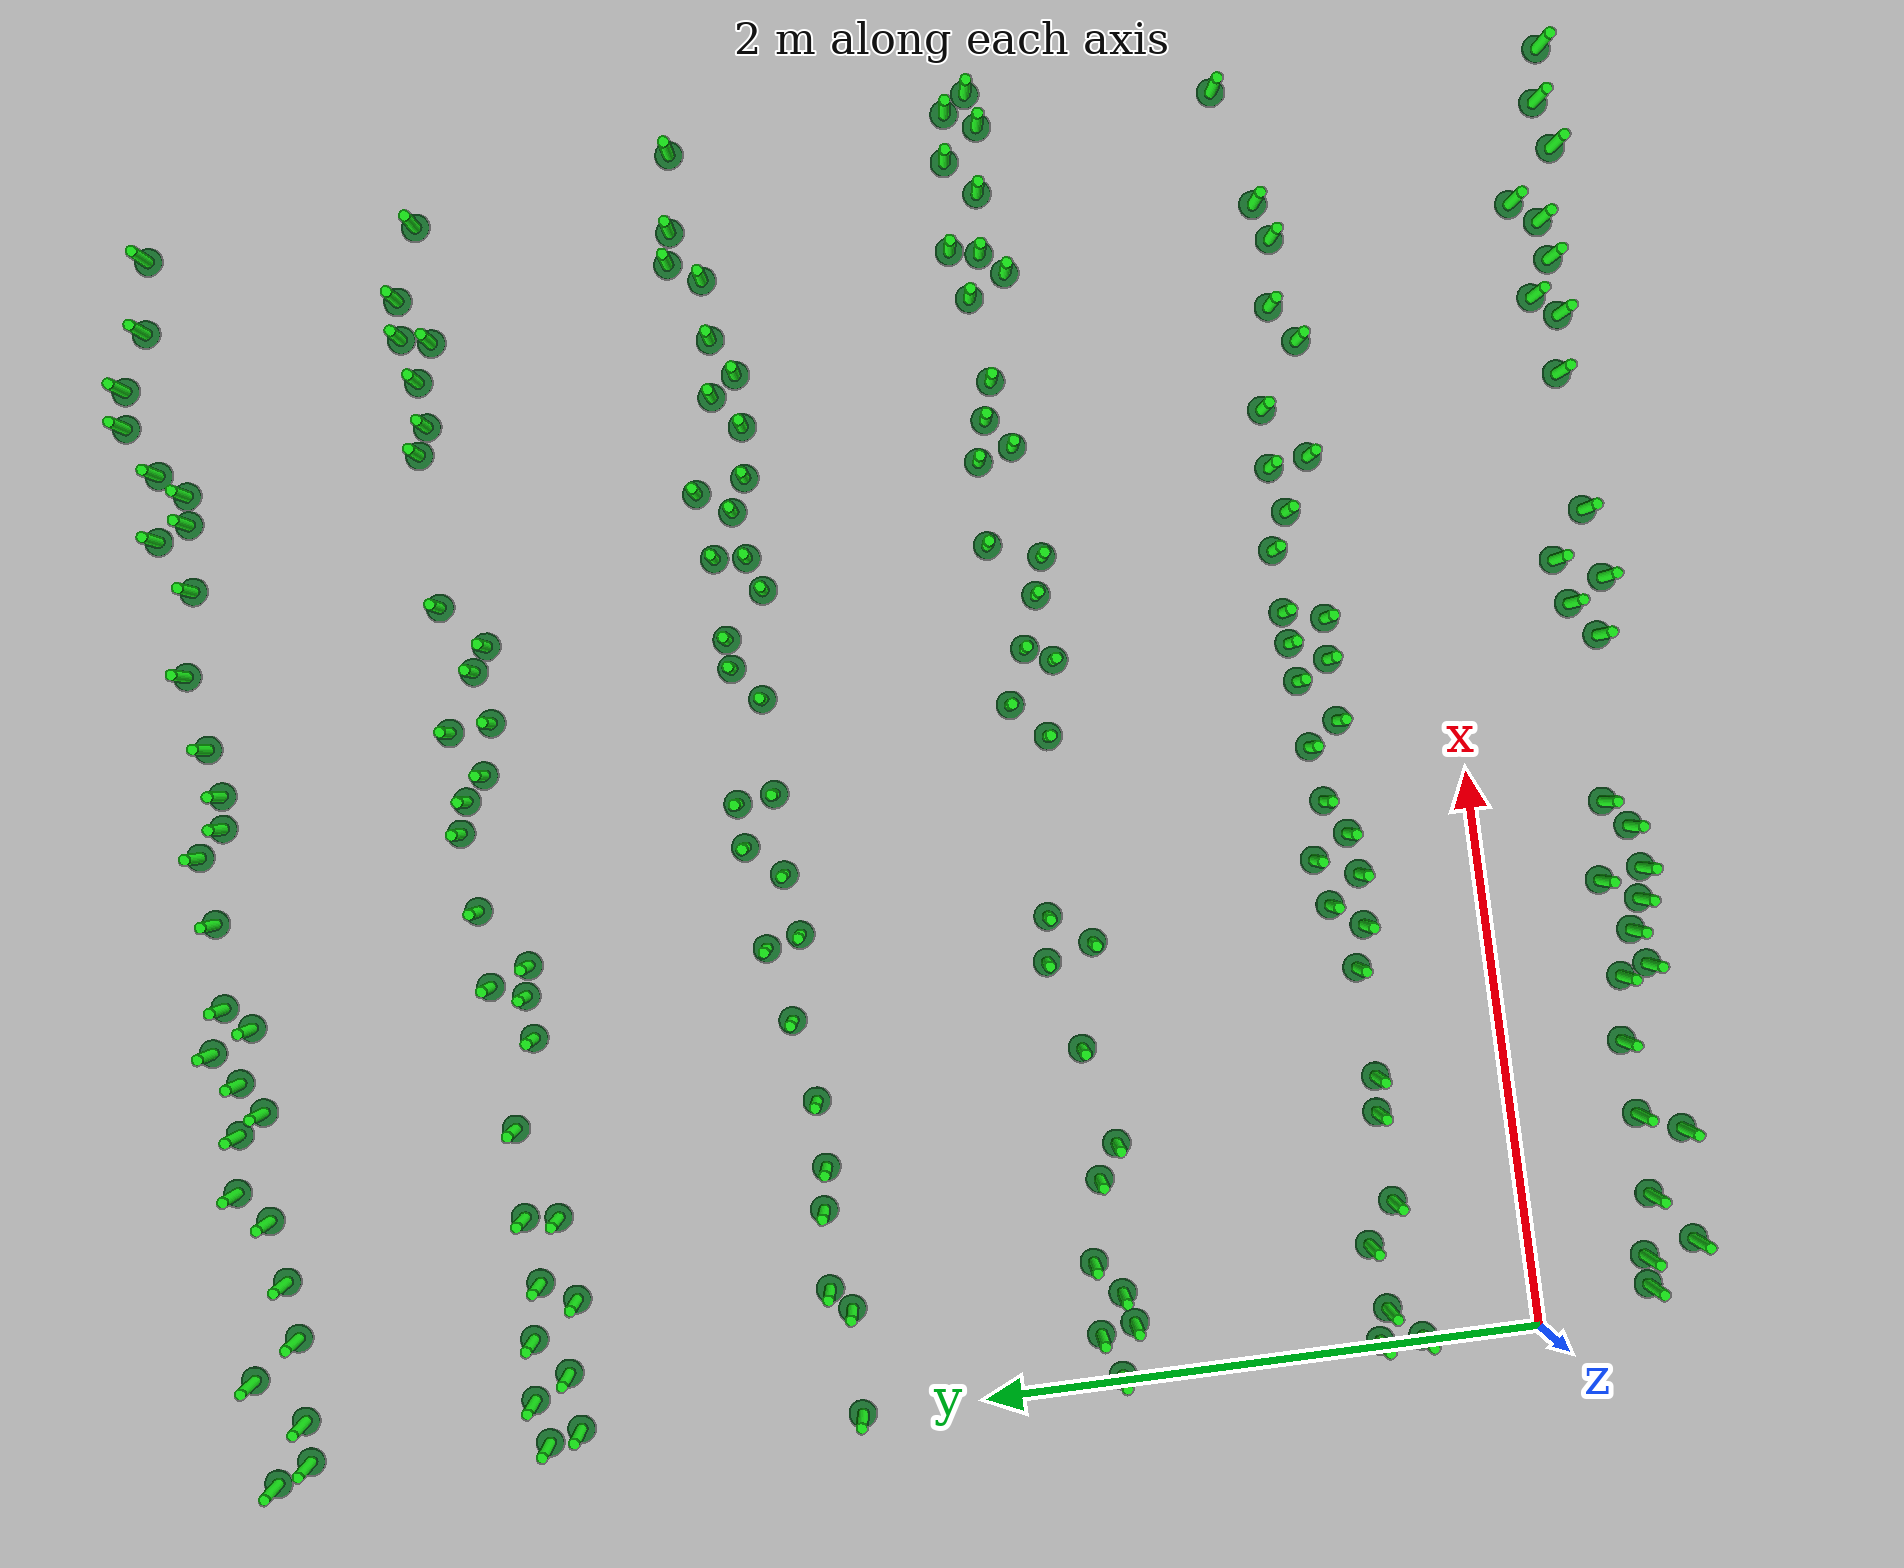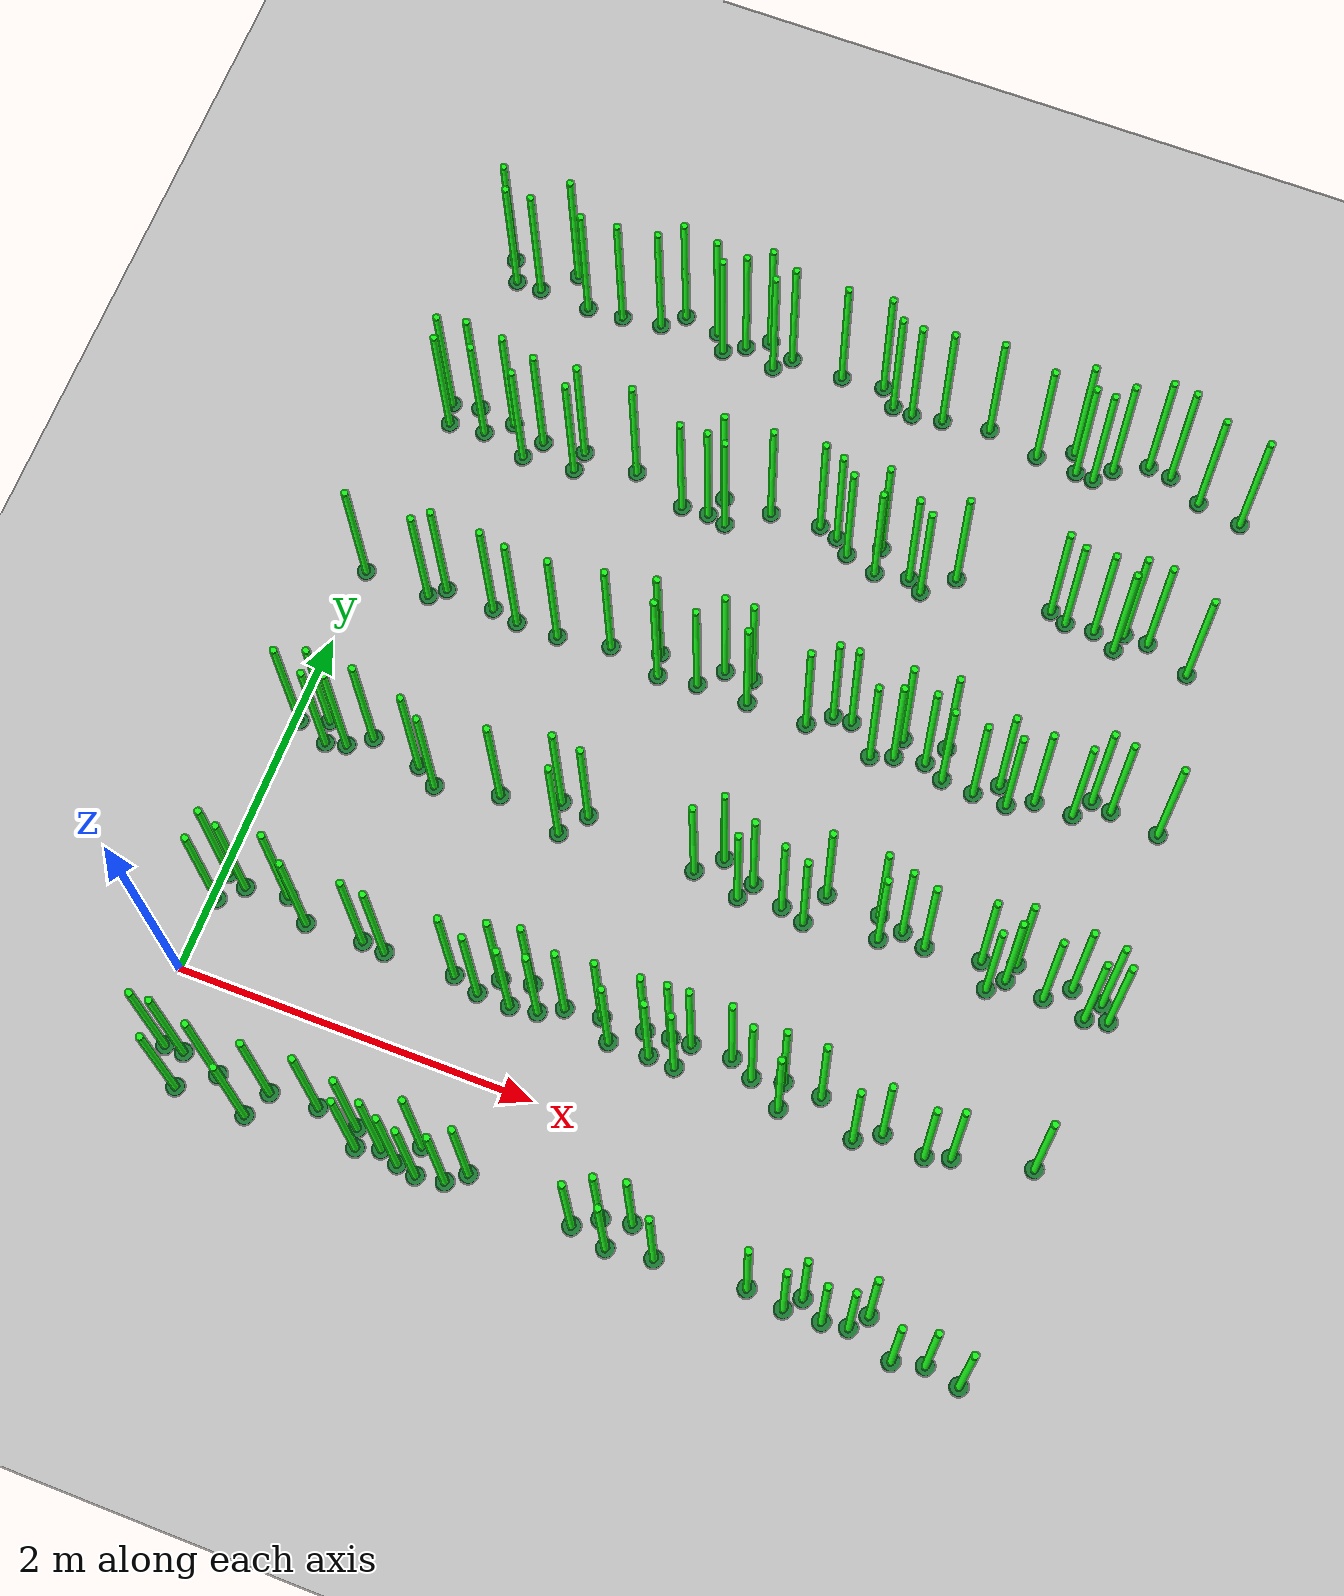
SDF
<sdf version="1.4">
 <world name="default">
  <include><uri>model://ground_plane</uri></include>
  <include><uri>model://sun</uri></include>
  <model name="plantgreen_0_1">
   <include><uri>model://plantgreen</uri></include>
   <pose>1.73545224768 -0.548032230448 0 0 0 0</pose>
  </model>
  <model name="plantgreen_0_5">
   <include><uri>model://plantgreen</uri></include>
   <pose>2.62827772479 -0.573247472044 0 0 0 0</pose>
  </model>
  <model name="plantgreen_0_7">
   <include><uri>model://plantgreen</uri></include>
   <pose>1.206130108 -0.451631431296 0 0 0 0</pose>
  </model>
  <model name="plantgreen_0_12">
   <include><uri>model://plantgreen</uri></include>
   <pose>2.55089327636 -0.4426856387 0 0 0 0</pose>
  </model>
  <model name="plantgreen_0_14">
   <include><uri>model://plantgreen</uri></include>
   <pose>3.57850832438 -0.540339102028 0 0 0 0</pose>
  </model>
  <model name="plantgreen_0_17">
   <include><uri>model://plantgreen</uri></include>
   <pose>4.53294510508 -0.589827056795 0 0 0 0</pose>
  </model>
  <model name="plantgreen_0_18">
   <include><uri>model://plantgreen</uri></include>
   <pose>3.65275558394 -0.45408733647 0 0 0 0</pose>
  </model>
  <model name="plantgreen_0_21">
   <include><uri>model://plantgreen</uri></include>
   <pose>3.99416627169 -0.419614441092 0 0 0 0</pose>
  </model>
  <model name="plantgreen_0_24">
   <include><uri>model://plantgreen</uri></include>
   <pose>0.420229606936 -0.448327021966 0 0 0 0</pose>
  </model>
  <model name="plantgreen_0_26">
   <include><uri>model://plantgreen</uri></include>
   <pose>1.58249665366 -0.572898651817 0 0 0 0</pose>
  </model>
  <model name="plantgreen_0_27">
   <include><uri>model://plantgreen</uri></include>
   <pose>3.78080171725 -0.531712156883 0 0 0 0</pose>
  </model>
  <model name="plantgreen_0_29">
   <include><uri>model://plantgreen</uri></include>
   <pose>2.42585623227 -0.528710994026 0 0 0 0</pose>
  </model>
  <model name="plantgreen_0_30">
   <include><uri>model://plantgreen</uri></include>
   <pose>2.7119630192 -0.408957797109 0 0 0 0</pose>
  </model>
  <model name="plantgreen_0_31">
   <include><uri>model://plantgreen</uri></include>
   <pose>2.87715192954 -0.535644876716 0 0 0 0</pose>
  </model>
  <model name="plantgreen_0_33">
   <include><uri>model://plantgreen</uri></include>
   <pose>4.34245566425 -0.553152959903 0 0 0 0</pose>
  </model>
  <model name="plantgreen_0_34">
   <include><uri>model://plantgreen</uri></include>
   <pose>4.17395334922 -0.59288575827 0 0 0 0</pose>
  </model>
  <model name="plantgreen_0_35">
   <include><uri>model://plantgreen</uri></include>
   <pose>1.55548572582 -0.420602689751 0 0 0 0</pose>
  </model>
  <model name="plantgreen_0_36">
   <include><uri>model://plantgreen</uri></include>
   <pose>1.36531400331 -0.508742469252 0 0 0 0</pose>
  </model>
  <model name="plantgreen_0_38">
   <include><uri>model://plantgreen</uri></include>
   <pose>3.3713024835 -0.508382862911 0 0 0 0</pose>
  </model>
  <model name="plantgreen_0_40">
   <include><uri>model://plantgreen</uri></include>
   <pose>0.976426079758 -0.42304564746 0 0 0 0</pose>
  </model>
  <model name="plantgreen_0_42">
   <include><uri>model://plantgreen</uri></include>
   <pose>0.0989170379754 -0.402608349328 0 0 0 0</pose>
  </model>
  <model name="plantgreen_0_43">
   <include><uri>model://plantgreen</uri></include>
   <pose>1.23805975206 -0.549157644529 0 0 0 0</pose>
  </model>
  <model name="plantgreen_0_44">
   <include><uri>model://plantgreen</uri></include>
   <pose>0.240538663402 -0.584701027993 0 0 0 0</pose>
  </model>
  <model name="plantgreen_0_49">
   <include><uri>model://plantgreen</uri></include>
   <pose>1.47276157063 -0.550307760252 0 0 0 0</pose>
  </model>
  <model name="plantgreen_0_50">
   <include><uri>model://plantgreen</uri></include>
   <pose>0.70991123768 -0.442092650005 0 0 0 0</pose>
  </model>
  <model name="plantgreen_0_51">
   <include><uri>model://plantgreen</uri></include>
   <pose>1.83351602526 -0.469220790621 0 0 0 0</pose>
  </model>
  <model name="plantgreen_0_55">
   <include><uri>model://plantgreen</uri></include>
   <pose>3.91844720433 -0.512928864806 0 0 0 0</pose>
  </model>
  <model name="plantgreen_0_58">
   <include><uri>model://plantgreen</uri></include>
   <pose>0.637477919388 -0.596274760994 0 0 0 0</pose>
  </model>
  <model name="plantgreen_0_59">
   <include><uri>model://plantgreen</uri></include>
   <pose>0.204301855102 -0.402571671429 0 0 0 0</pose>
  </model>
  <model name="plantgreen_1_3">
   <include><uri>model://plantgreen</uri></include>
   <pose>0.516275538463 0.46485186387 0 0 0 0</pose>
  </model>
  <model name="plantgreen_1_5">
   <include><uri>model://plantgreen</uri></include>
   <pose>1.76087455379 0.581489120683 0 0 0 0</pose>
  </model>
  <model name="plantgreen_1_6">
   <include><uri>model://plantgreen</uri></include>
   <pose>0.371160581179 0.568495623496 0 0 0 0</pose>
  </model>
  <model name="plantgreen_1_7">
   <include><uri>model://plantgreen</uri></include>
   <pose>3.60957397872 0.401553831186 0 0 0 0</pose>
  </model>
  <model name="plantgreen_1_11">
   <include><uri>model://plantgreen</uri></include>
   <pose>3.17279222188 0.556764871481 0 0 0 0</pose>
  </model>
  <model name="plantgreen_1_16">
   <include><uri>model://plantgreen</uri></include>
   <pose>0.965590082405 0.466394414352 0 0 0 0</pose>
  </model>
  <model name="plantgreen_1_17">
   <include><uri>model://plantgreen</uri></include>
   <pose>2.40338610693 0.556018770179 0 0 0 0</pose>
  </model>
  <model name="plantgreen_1_18">
   <include><uri>model://plantgreen</uri></include>
   <pose>2.16492492592 0.544967701245 0 0 0 0</pose>
  </model>
  <model name="plantgreen_1_19">
   <include><uri>model://plantgreen</uri></include>
   <pose>4.5320235128 0.586042221184 0 0 0 0</pose>
  </model>
  <model name="plantgreen_1_20">
   <include><uri>model://plantgreen</uri></include>
   <pose>3.19484301711 0.415369144731 0 0 0 0</pose>
  </model>
  <model name="plantgreen_1_21">
   <include><uri>model://plantgreen</uri></include>
   <pose>0.022143998074 0.421690821078 0 0 0 0</pose>
  </model>
  <model name="plantgreen_1_22">
   <include><uri>model://plantgreen</uri></include>
   <pose>1.35934952645 0.481278800805 0 0 0 0</pose>
  </model>
  <model name="plantgreen_1_23">
   <include><uri>model://plantgreen</uri></include>
   <pose>3.38147184066 0.554977845366 0 0 0 0</pose>
  </model>
  <model name="plantgreen_1_24">
   <include><uri>model://plantgreen</uri></include>
   <pose>2.6141012379 0.429903202778 0 0 0 0</pose>
  </model>
  <model name="plantgreen_1_25">
   <include><uri>model://plantgreen</uri></include>
   <pose>4.11469513928 0.488653187397 0 0 0 0</pose>
  </model>
  <model name="plantgreen_1_28">
   <include><uri>model://plantgreen</uri></include>
   <pose>1.84070223976 0.451302171213 0 0 0 0</pose>
  </model>
  <model name="plantgreen_1_30">
   <include><uri>model://plantgreen</uri></include>
   <pose>2.46770896279 0.439412411855 0 0 0 0</pose>
  </model>
  <model name="plantgreen_1_31">
   <include><uri>model://plantgreen</uri></include>
   <pose>1.69224374538 0.429519013544 0 0 0 0</pose>
  </model>
  <model name="plantgreen_1_32">
   <include><uri>model://plantgreen</uri></include>
   <pose>2.24553129308 0.434845216394 0 0 0 0</pose>
  </model>
  <model name="plantgreen_1_35">
   <include><uri>model://plantgreen</uri></include>
   <pose>3.00923892445 0.51850611758 0 0 0 0</pose>
  </model>
  <model name="plantgreen_1_38">
   <include><uri>model://plantgreen</uri></include>
   <pose>0.024698857375 0.575052049235 0 0 0 0</pose>
  </model>
  <model name="plantgreen_1_39">
   <include><uri>model://plantgreen</uri></include>
   <pose>3.98263374528 0.447201015748 0 0 0 0</pose>
  </model>
  <model name="plantgreen_1_41">
   <include><uri>model://plantgreen</uri></include>
   <pose>0.137117574713 0.53415031125 0 0 0 0</pose>
  </model>
  <model name="plantgreen_1_42">
   <include><uri>model://plantgreen</uri></include>
   <pose>1.96626155463 0.519567983331 0 0 0 0</pose>
  </model>
  <model name="plantgreen_1_43">
   <include><uri>model://plantgreen</uri></include>
   <pose>0.837377189547 0.479355635568 0 0 0 0</pose>
  </model>
  <model name="plantgreen_1_45">
   <include><uri>model://plantgreen</uri></include>
   <pose>2.87796808253 0.582552041832 0 0 0 0</pose>
  </model>
  <model name="plantgreen_1_47">
   <include><uri>model://plantgreen</uri></include>
   <pose>1.50822464225 0.43538574162 0 0 0 0</pose>
  </model>
  <model name="plantgreen_1_50">
   <include><uri>model://plantgreen</uri></include>
   <pose>3.74346259895 0.482237772252 0 0 0 0</pose>
  </model>
  <model name="plantgreen_1_52">
   <include><uri>model://plantgreen</uri></include>
   <pose>1.594234345 0.546770324618 0 0 0 0</pose>
  </model>
  <model name="plantgreen_1_54">
   <include><uri>model://plantgreen</uri></include>
   <pose>2.54130270051 0.568478263568 0 0 0 0</pose>
  </model>
  <model name="plantgreen_1_58">
   <include><uri>model://plantgreen</uri></include>
   <pose>2.65378537102 0.574687616032 0 0 0 0</pose>
  </model>
  <model name="plantgreen_2_3">
   <include><uri>model://plantgreen</uri></include>
   <pose>4.52021411389 1.4328717463 0 0 0 0</pose>
  </model>
  <model name="plantgreen_2_4">
   <include><uri>model://plantgreen</uri></include>
   <pose>4.64165898935 1.4594548055 0 0 0 0</pose>
  </model>
  <model name="plantgreen_2_5">
   <include><uri>model://plantgreen</uri></include>
   <pose>2.32652682271 1.46701111157 0 0 0 0</pose>
  </model>
  <model name="plantgreen_2_6">
   <include><uri>model://plantgreen</uri></include>
   <pose>1.68672025426 1.55315325554 0 0 0 0</pose>
  </model>
  <model name="plantgreen_2_7">
   <include><uri>model://plantgreen</uri></include>
   <pose>3.03106430449 1.59172442947 0 0 0 0</pose>
  </model>
  <model name="plantgreen_2_9">
   <include><uri>model://plantgreen</uri></include>
   <pose>2.59353867407 1.41209298601 0 0 0 0</pose>
  </model>
  <model name="plantgreen_2_10">
   <include><uri>model://plantgreen</uri></include>
   <pose>4.09251626926 1.58777856244 0 0 0 0</pose>
  </model>
  <model name="plantgreen_2_11">
   <include><uri>model://plantgreen</uri></include>
   <pose>0.437669119764 1.55377225814 0 0 0 0</pose>
  </model>
  <model name="plantgreen_2_12">
   <include><uri>model://plantgreen</uri></include>
   <pose>3.61118955529 1.50312861784 0 0 0 0</pose>
  </model>
  <model name="plantgreen_2_15">
   <include><uri>model://plantgreen</uri></include>
   <pose>0.316876862207 1.46544464181 0 0 0 0</pose>
  </model>
  <model name="plantgreen_2_16">
   <include><uri>model://plantgreen</uri></include>
   <pose>1.20255830379 1.49393688939 0 0 0 0</pose>
  </model>
  <model name="plantgreen_2_19">
   <include><uri>model://plantgreen</uri></include>
   <pose>3.36847147389 1.45768002931 0 0 0 0</pose>
  </model>
  <model name="plantgreen_2_20">
   <include><uri>model://plantgreen</uri></include>
   <pose>2.64697638227 1.50863216336 0 0 0 0</pose>
  </model>
  <model name="plantgreen_2_23">
   <include><uri>model://plantgreen</uri></include>
   <pose>1.52491593801 1.57745116354 0 0 0 0</pose>
  </model>
  <model name="plantgreen_2_24">
   <include><uri>model://plantgreen</uri></include>
   <pose>3.47590622761 1.54128971961 0 0 0 0</pose>
  </model>
  <model name="plantgreen_2_25">
   <include><uri>model://plantgreen</uri></include>
   <pose>0.72982540575 1.49327077016 0 0 0 0</pose>
  </model>
  <model name="plantgreen_2_26">
   <include><uri>model://plantgreen</uri></include>
   <pose>4.28370714834 1.46299707782 0 0 0 0</pose>
  </model>
  <model name="plantgreen_2_29">
   <include><uri>model://plantgreen</uri></include>
   <pose>0.849943352267 1.4169655778 0 0 0 0</pose>
  </model>
  <model name="plantgreen_2_30">
   <include><uri>model://plantgreen</uri></include>
   <pose>0.178792584758 1.56092473952 0 0 0 0</pose>
  </model>
  <model name="plantgreen_2_32">
   <include><uri>model://plantgreen</uri></include>
   <pose>1.5740373277 1.40623584641 0 0 0 0</pose>
  </model>
  <model name="plantgreen_2_33">
   <include><uri>model://plantgreen</uri></include>
   <pose>4.40969834153 1.56400104135 0 0 0 0</pose>
  </model>
  <model name="plantgreen_2_36">
   <include><uri>model://plantgreen</uri></include>
   <pose>4.58103839522 1.54199559716 0 0 0 0</pose>
  </model>
  <model name="plantgreen_2_38">
   <include><uri>model://plantgreen</uri></include>
   <pose>0.0228567509796 1.50422086194 0 0 0 0</pose>
  </model>
  <model name="plantgreen_2_40">
   <include><uri>model://plantgreen</uri></include>
   <pose>3.98791894974 1.40179752859 0 0 0 0</pose>
  </model>
  <model name="plantgreen_2_43">
   <include><uri>model://plantgreen</uri></include>
   <pose>4.06811695736 1.48370252347 0 0 0 0</pose>
  </model>
  <model name="plantgreen_2_45">
   <include><uri>model://plantgreen</uri></include>
   <pose>2.96624746134 1.40463038857 0 0 0 0</pose>
  </model>
  <model name="plantgreen_2_46">
   <include><uri>model://plantgreen</uri></include>
   <pose>3.91469711861 1.53913192712 0 0 0 0</pose>
  </model>
  <model name="plantgreen_2_48">
   <include><uri>model://plantgreen</uri></include>
   <pose>3.33084629979 1.58422052021 0 0 0 0</pose>
  </model>
  <model name="plantgreen_2_52">
   <include><uri>model://plantgreen</uri></include>
   <pose>2.45486577653 1.58618728022 0 0 0 0</pose>
  </model>
  <model name="plantgreen_2_53">
   <include><uri>model://plantgreen</uri></include>
   <pose>0.20521440541 1.43698505845 0 0 0 0</pose>
  </model>
  <model name="plantgreen_2_59">
   <include><uri>model://plantgreen</uri></include>
   <pose>2.83209582968 1.44343214005 0 0 0 0</pose>
  </model>
  <model name="plantgreen_3_1">
   <include><uri>model://plantgreen</uri></include>
   <pose>3.11246619797 2.56722862028 0 0 0 0</pose>
  </model>
  <model name="plantgreen_3_3">
   <include><uri>model://plantgreen</uri></include>
   <pose>2.71499189301 2.55734823905 0 0 0 0</pose>
  </model>
  <model name="plantgreen_3_4">
   <include><uri>model://plantgreen</uri></include>
   <pose>1.438548112 2.50725799683 0 0 0 0</pose>
  </model>
  <model name="plantgreen_3_7">
   <include><uri>model://plantgreen</uri></include>
   <pose>1.14199236137 2.45996717105 0 0 0 0</pose>
  </model>
  <model name="plantgreen_3_9">
   <include><uri>model://plantgreen</uri></include>
   <pose>3.89121738081 2.4785881368 0 0 0 0</pose>
  </model>
  <model name="plantgreen_3_10">
   <include><uri>model://plantgreen</uri></include>
   <pose>3.56729966912 2.40600976558 0 0 0 0</pose>
  </model>
  <model name="plantgreen_3_11">
   <include><uri>model://plantgreen</uri></include>
   <pose>3.38549229888 2.4212053378 0 0 0 0</pose>
  </model>
  <model name="plantgreen_3_13">
   <include><uri>model://plantgreen</uri></include>
   <pose>2.24987276979 2.46535692918 0 0 0 0</pose>
  </model>
  <model name="plantgreen_3_18">
   <include><uri>model://plantgreen</uri></include>
   <pose>2.23194020365 2.59990468331 0 0 0 0</pose>
  </model>
  <model name="plantgreen_3_22">
   <include><uri>model://plantgreen</uri></include>
   <pose>4.56642477406 2.53702583885 0 0 0 0</pose>
  </model>
  <model name="plantgreen_3_23">
   <include><uri>model://plantgreen</uri></include>
   <pose>1.73927983011 2.43960316621 0 0 0 0</pose>
  </model>
  <model name="plantgreen_3_24">
   <include><uri>model://plantgreen</uri></include>
   <pose>2.82018641918 2.56065488798 0 0 0 0</pose>
  </model>
  <model name="plantgreen_3_25">
   <include><uri>model://plantgreen</uri></include>
   <pose>4.17778021574 2.59294792658 0 0 0 0</pose>
  </model>
  <model name="plantgreen_3_26">
   <include><uri>model://plantgreen</uri></include>
   <pose>3.68669468298 2.49936116676 0 0 0 0</pose>
  </model>
  <model name="plantgreen_3_29">
   <include><uri>model://plantgreen</uri></include>
   <pose>4.10531206514 2.47941938265 0 0 0 0</pose>
  </model>
  <model name="plantgreen_3_33">
   <include><uri>model://plantgreen</uri></include>
   <pose>0.469332767493 2.50209564705 0 0 0 0</pose>
  </model>
  <model name="plantgreen_3_36">
   <include><uri>model://plantgreen</uri></include>
   <pose>4.29052180904 2.5705945935 0 0 0 0</pose>
  </model>
  <model name="plantgreen_3_37">
   <include><uri>model://plantgreen</uri></include>
   <pose>0.903143618903 2.45735671995 0 0 0 0</pose>
  </model>
  <model name="plantgreen_3_38">
   <include><uri>model://plantgreen</uri></include>
   <pose>2.07454137936 2.59354808377 0 0 0 0</pose>
  </model>
  <model name="plantgreen_3_39">
   <include><uri>model://plantgreen</uri></include>
   <pose>0.752579263136 2.48539731299 0 0 0 0</pose>
  </model>
  <model name="plantgreen_3_40">
   <include><uri>model://plantgreen</uri></include>
   <pose>2.59222905518 2.46244901003 0 0 0 0</pose>
  </model>
  <model name="plantgreen_3_45">
   <include><uri>model://plantgreen</uri></include>
   <pose>2.97863283262 2.40899571414 0 0 0 0</pose>
  </model>
  <model name="plantgreen_3_46">
   <include><uri>model://plantgreen</uri></include>
   <pose>1.95980931511 2.46831927693 0 0 0 0</pose>
  </model>
  <model name="plantgreen_3_47">
   <include><uri>model://plantgreen</uri></include>
   <pose>3.27007028266 2.48010167991 0 0 0 0</pose>
  </model>
  <model name="plantgreen_3_53">
   <include><uri>model://plantgreen</uri></include>
   <pose>0.0103576413998 2.44520708062 0 0 0 0</pose>
  </model>
  <model name="plantgreen_3_54">
   <include><uri>model://plantgreen</uri></include>
   <pose>3.35063745774 2.59959530728 0 0 0 0</pose>
  </model>
  <model name="plantgreen_3_55">
   <include><uri>model://plantgreen</uri></include>
   <pose>1.70620981971 2.5648602894 0 0 0 0</pose>
  </model>
  <model name="plantgreen_3_57">
   <include><uri>model://plantgreen</uri></include>
   <pose>0.388221905914 2.4322308746 0 0 0 0</pose>
  </model>
  <model name="plantgreen_3_59">
   <include><uri>model://plantgreen</uri></include>
   <pose>3.100411014 2.45242544851 0 0 0 0</pose>
  </model>
  <model name="plantgreen_3_60">
   <include><uri>model://plantgreen</uri></include>
   <pose>3.75503309929 2.40647113175 0 0 0 0</pose>
  </model>
  <model name="plantgreen_4_2">
   <include><uri>model://plantgreen</uri></include>
   <pose>2.63557344609 3.43551242623 0 0 0 0</pose>
  </model>
  <model name="plantgreen_4_9">
   <include><uri>model://plantgreen</uri></include>
   <pose>0.866922796932 3.55072186324 0 0 0 0</pose>
  </model>
  <model name="plantgreen_4_11">
   <include><uri>model://plantgreen</uri></include>
   <pose>1.18541956966 3.54083528986 0 0 0 0</pose>
  </model>
  <model name="plantgreen_4_12">
   <include><uri>model://plantgreen</uri></include>
   <pose>4.037978182 3.57352101419 0 0 0 0</pose>
  </model>
  <model name="plantgreen_4_14">
   <include><uri>model://plantgreen</uri></include>
   <pose>3.87739581801 3.53305829891 0 0 0 0</pose>
  </model>
  <model name="plantgreen_4_19">
   <include><uri>model://plantgreen</uri></include>
   <pose>3.06948092025 3.5626219095 0 0 0 0</pose>
  </model>
  <model name="plantgreen_4_20">
   <include><uri>model://plantgreen</uri></include>
   <pose>2.62130552817 3.58761867193 0 0 0 0</pose>
  </model>
  <model name="plantgreen_4_21">
   <include><uri>model://plantgreen</uri></include>
   <pose>0.0896011911145 3.45025916268 0 0 0 0</pose>
  </model>
  <model name="plantgreen_4_24">
   <include><uri>model://plantgreen</uri></include>
   <pose>2.91000638118 3.41686586373 0 0 0 0</pose>
  </model>
  <model name="plantgreen_4_25">
   <include><uri>model://plantgreen</uri></include>
   <pose>4.1757652988 3.56843987741 0 0 0 0</pose>
  </model>
  <model name="plantgreen_4_28">
   <include><uri>model://plantgreen</uri></include>
   <pose>4.01150542269 3.46799359335 0 0 0 0</pose>
  </model>
  <model name="plantgreen_4_29">
   <include><uri>model://plantgreen</uri></include>
   <pose>0.0562048381833 3.56813971324 0 0 0 0</pose>
  </model>
  <model name="plantgreen_4_35">
   <include><uri>model://plantgreen</uri></include>
   <pose>3.61934153261 3.56405209487 0 0 0 0</pose>
  </model>
  <model name="plantgreen_4_37">
   <include><uri>model://plantgreen</uri></include>
   <pose>1.97467473565 3.57101657515 0 0 0 0</pose>
  </model>
  <model name="plantgreen_4_38">
   <include><uri>model://plantgreen</uri></include>
   <pose>1.49829890136 3.43315813538 0 0 0 0</pose>
  </model>
  <model name="plantgreen_4_39">
   <include><uri>model://plantgreen</uri></include>
   <pose>1.65144080443 3.44113991882 0 0 0 0</pose>
  </model>
  <model name="plantgreen_4_40">
   <include><uri>model://plantgreen</uri></include>
   <pose>2.45378714846 3.48578344807 0 0 0 0</pose>
  </model>
  <model name="plantgreen_4_41">
   <include><uri>model://plantgreen</uri></include>
   <pose>2.3694380116 3.56001428539 0 0 0 0</pose>
  </model>
  <model name="plantgreen_4_43">
   <include><uri>model://plantgreen</uri></include>
   <pose>2.25839756763 3.5951170872 0 0 0 0</pose>
  </model>
  <model name="plantgreen_4_44">
   <include><uri>model://plantgreen</uri></include>
   <pose>1.75826658815 3.41812399329 0 0 0 0</pose>
  </model>
  <model name="plantgreen_4_45">
   <include><uri>model://plantgreen</uri></include>
   <pose>4.43004820797 3.46973378173 0 0 0 0</pose>
  </model>
  <model name="plantgreen_4_46">
   <include><uri>model://plantgreen</uri></include>
   <pose>0.21376650673 3.59943111155 0 0 0 0</pose>
  </model>
  <model name="plantgreen_4_49">
   <include><uri>model://plantgreen</uri></include>
   <pose>0.627471871472 3.52664927038 0 0 0 0</pose>
  </model>
  <model name="plantgreen_4_52">
   <include><uri>model://plantgreen</uri></include>
   <pose>3.71544975953 3.52333299859 0 0 0 0</pose>
  </model>
  <model name="plantgreen_4_53">
   <include><uri>model://plantgreen</uri></include>
   <pose>2.82556844606 3.47292081386 0 0 0 0</pose>
  </model>
  <model name="plantgreen_4_54">
   <include><uri>model://plantgreen</uri></include>
   <pose>0.850925920083 3.43119879264 0 0 0 0</pose>
  </model>
  <model name="plantgreen_4_55">
   <include><uri>model://plantgreen</uri></include>
   <pose>0.293316464212 3.46676485713 0 0 0 0</pose>
  </model>
  <model name="plantgreen_4_56">
   <include><uri>model://plantgreen</uri></include>
   <pose>0.552232006625 3.40408894415 0 0 0 0</pose>
  </model>
  <model name="plantgreen_4_57">
   <include><uri>model://plantgreen</uri></include>
   <pose>1.70076347971 3.56309868439 0 0 0 0</pose>
  </model>
  <model name="plantgreen_4_59">
   <include><uri>model://plantgreen</uri></include>
   <pose>0.429882245591 3.57538333567 0 0 0 0</pose>
  </model>
  <model name="plantgreen_5_3">
   <include><uri>model://plantgreen</uri></include>
   <pose>0.248012882127 4.42414020145 0 0 0 0</pose>
  </model>
  <model name="plantgreen_5_6">
   <include><uri>model://plantgreen</uri></include>
   <pose>0.975105452895 4.45539038197 0 0 0 0</pose>
  </model>
  <model name="plantgreen_5_8">
   <include><uri>model://plantgreen</uri></include>
   <pose>0.0386365719706 4.55162461048 0 0 0 0</pose>
  </model>
  <model name="plantgreen_5_9">
   <include><uri>model://plantgreen</uri></include>
   <pose>4.17930908679 4.4759444443 0 0 0 0</pose>
  </model>
  <model name="plantgreen_5_13">
   <include><uri>model://plantgreen</uri></include>
   <pose>2.29622530888 4.53204753478 0 0 0 0</pose>
  </model>
  <model name="plantgreen_5_14">
   <include><uri>model://plantgreen</uri></include>
   <pose>2.67579384835 4.45264506125 0 0 0 0</pose>
  </model>
  <model name="plantgreen_5_19">
   <include><uri>model://plantgreen</uri></include>
   <pose>3.24308350657 4.42996472057 0 0 0 0</pose>
  </model>
  <model name="plantgreen_5_25">
   <include><uri>model://plantgreen</uri></include>
   <pose>1.29396516553 4.52369812285 0 0 0 0</pose>
  </model>
  <model name="plantgreen_5_26">
   <include><uri>model://plantgreen</uri></include>
   <pose>2.94425275837 4.49272606551 0 0 0 0</pose>
  </model>
  <model name="plantgreen_5_27">
   <include><uri>model://plantgreen</uri></include>
   <pose>1.47671134161 4.49692559904 0 0 0 0</pose>
  </model>
  <model name="plantgreen_5_28">
   <include><uri>model://plantgreen</uri></include>
   <pose>0.10106078745 4.42470491066 0 0 0 0</pose>
  </model>
  <model name="plantgreen_5_29">
   <include><uri>model://plantgreen</uri></include>
   <pose>0.545359198122 4.40958186833 0 0 0 0</pose>
  </model>
  <model name="plantgreen_5_31">
   <include><uri>model://plantgreen</uri></include>
   <pose>2.38806360084 4.43671129153 0 0 0 0</pose>
  </model>
  <model name="plantgreen_5_32">
   <include><uri>model://plantgreen</uri></include>
   <pose>1.75043407969 4.51751763263 0 0 0 0</pose>
  </model>
  <model name="plantgreen_5_34">
   <include><uri>model://plantgreen</uri></include>
   <pose>3.67017938495 4.49822397449 0 0 0 0</pose>
  </model>
  <model name="plantgreen_5_37">
   <include><uri>model://plantgreen</uri></include>
   <pose>3.43597088998 4.52984775335 0 0 0 0</pose>
  </model>
  <model name="plantgreen_5_40">
   <include><uri>model://plantgreen</uri></include>
   <pose>2.05315880315 4.50871199477 0 0 0 0</pose>
  </model>
  <model name="plantgreen_5_42">
   <include><uri>model://plantgreen</uri></include>
   <pose>2.50348304647 4.42483441331 0 0 0 0</pose>
  </model>
  <model name="plantgreen_5_43">
   <include><uri>model://plantgreen</uri></include>
   <pose>1.66659427903 4.42868584014 0 0 0 0</pose>
  </model>
  <model name="plantgreen_5_44">
   <include><uri>model://plantgreen</uri></include>
   <pose>3.85219803713 4.59144320454 0 0 0 0</pose>
  </model>
  <model name="plantgreen_5_45">
   <include><uri>model://plantgreen</uri></include>
   <pose>3.98473604253 4.57595800009 0 0 0 0</pose>
  </model>
  <model name="plantgreen_5_46">
   <include><uri>model://plantgreen</uri></include>
   <pose>3.58433857738 4.40697840447 0 0 0 0</pose>
  </model>
  <model name="plantgreen_5_47">
   <include><uri>model://plantgreen</uri></include>
   <pose>1.36262904727 4.42741864427 0 0 0 0</pose>
  </model>
  <model name="plantgreen_5_48">
   <include><uri>model://plantgreen</uri></include>
   <pose>4.43390609803 4.43370642437 0 0 0 0</pose>
  </model>
  <model name="plantgreen_5_49">
   <include><uri>model://plantgreen</uri></include>
   <pose>1.08899486687 4.55872136723 0 0 0 0</pose>
  </model>
  <model name="plantgreen_5_51">
   <include><uri>model://plantgreen</uri></include>
   <pose>1.59583060404 4.5798268403 0 0 0 0</pose>
  </model>
  <model name="plantgreen_5_52">
   <include><uri>model://plantgreen</uri></include>
   <pose>0.750800112418 4.42481137274 0 0 0 0</pose>
  </model>
  <model name="plantgreen_5_53">
   <include><uri>model://plantgreen</uri></include>
   <pose>0.415264791606 4.58553508994 0 0 0 0</pose>
  </model>
  <model name="plantgreen_5_54">
   <include><uri>model://plantgreen</uri></include>
   <pose>3.4811220584 4.41379566705 0 0 0 0</pose>
  </model>
 </world>
</sdf>
